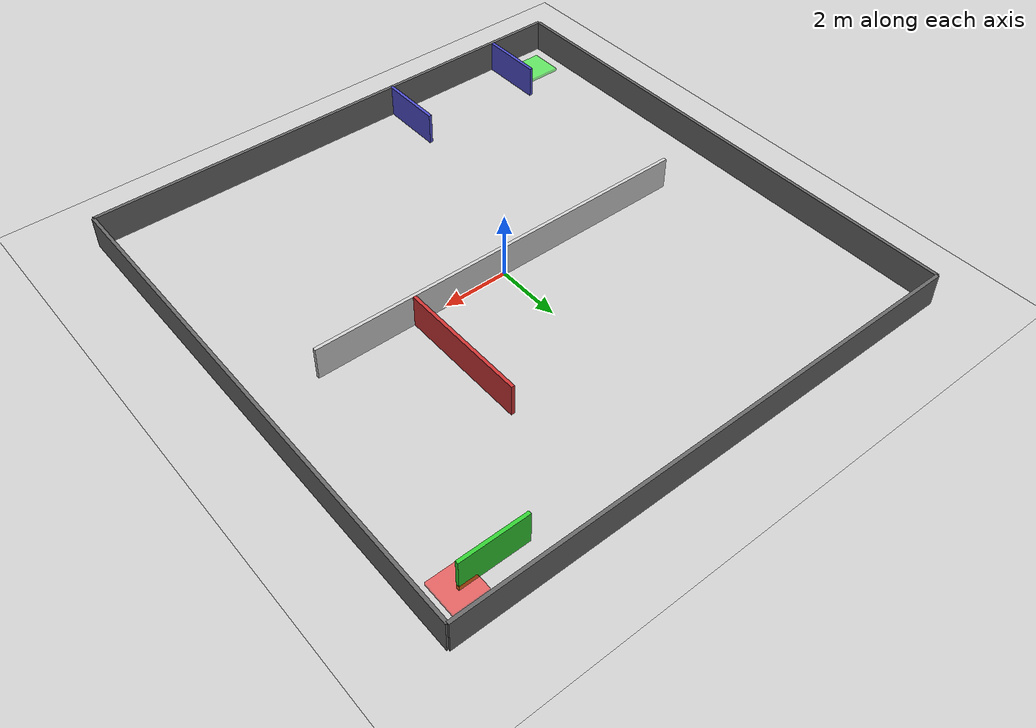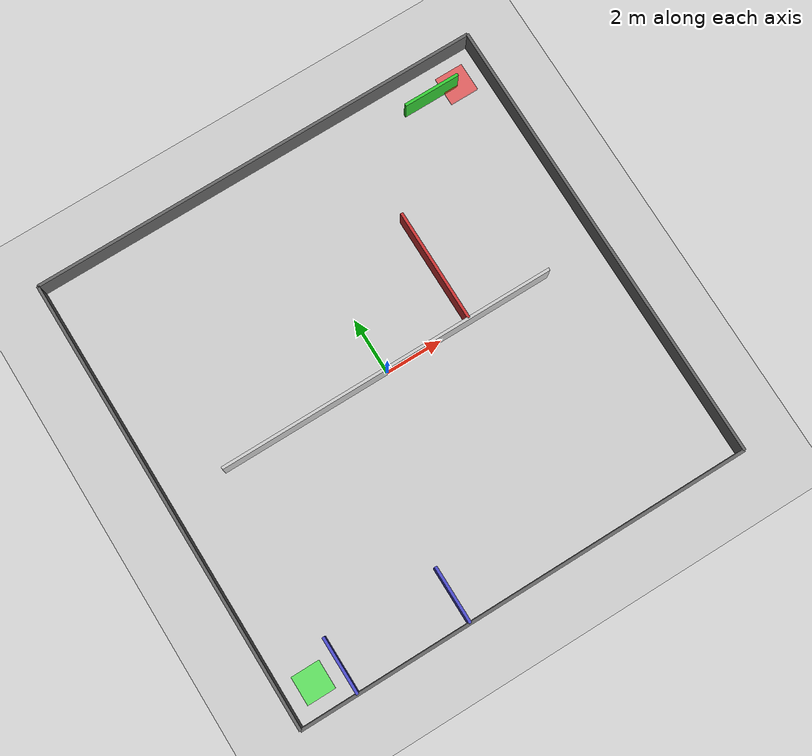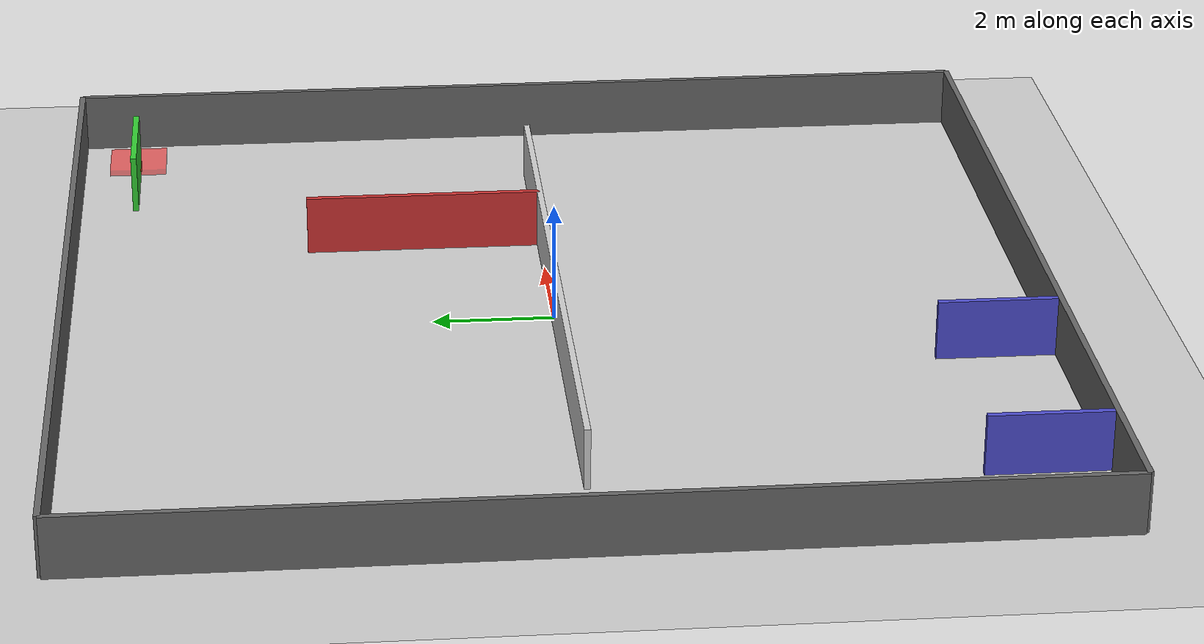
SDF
<?xml version="1.0"?>
<sdf version="1.7">
  <world name="advanced_maze">

    <!-- Environment Setup -->
    <include>
      <uri>model://sun</uri>
      <pose>0 0 10 0 0 0</pose>
    </include>

    <include>
      <uri>model://ground_plane</uri>
      <material>
        <ambient>0.2 0.2 0.2 1</ambient>
      </material>
    </include>

    <!-- Maze Structure -->
    <model name="maze_walls">
      <static>true</static>

      <!-- Outer Perimeter -->
      <link name="outer_walls">
        <!-- North Wall -->
        <collision name="north_wall">
          <pose>0 8 0.5 0 0 0</pose>
          <geometry>
            <box><size>16 0.1 1</size></box>
          </geometry>
        </collision>
        <visual name="north_wall_visual">
          <pose>0 8 0.5 0 0 0</pose>
          <geometry>
            <box><size>16 0.1 1</size></box>
          </geometry>
          <material><ambient>0.4 0.4 0.4 1</ambient></material>
        </visual>

        <!-- South Wall -->
        <collision name="south_wall">
          <pose>0 -8 0.5 0 0 0</pose>
          <geometry>
            <box><size>16 0.1 1</size></box>
          </geometry>
        </collision>
        <visual name="south_wall_visual">
          <pose>0 -8 0.5 0 0 0</pose>
          <geometry>
            <box><size>16 0.1 1</size></box>
          </geometry>
          <material><ambient>0.4 0.4 0.4 1</ambient></material>
        </visual>

        <!-- East Wall -->
        <collision name="east_wall">
          <pose>8 0 0.5 0 0 0</pose>
          <geometry>
            <box><size>0.1 16 1</size></box>
          </geometry>
        </collision>
        <visual name="east_wall_visual">
          <pose>8 0 0.5 0 0 0</pose>
          <geometry>
            <box><size>0.1 16 1</size></box>
          </geometry>
          <material><ambient>0.4 0.4 0.4 1</ambient></material>
        </visual>

        <!-- West Wall -->
        <collision name="west_wall">
          <pose>-8 0 0.5 0 0 0</pose>
          <geometry>
            <box><size>0.1 16 1</size></box>
          </geometry>
        </collision>
        <visual name="west_wall_visual">
          <pose>-8 0 0.5 0 0 0</pose>
          <geometry>
            <box><size>0.1 16 1</size></box>
          </geometry>
          <material><ambient>0.4 0.4 0.4 1</ambient></material>
        </visual>
      </link>

      <!-- Internal Maze Structure -->
      <link name="internal_walls">
        <!-- Entry Path -->
        <collision name="entry_wall_left">
          <pose>-6 -7 0.5 0 0 0</pose>
          <geometry>
            <box><size>0.1 2 1</size></box>
          </geometry>
        </collision>
        <visual name="entry_wall_left_visual">
          <pose>-6 -7 0.5 0 0 0</pose>
          <geometry>
            <box><size>0.1 2 1</size></box>
          </geometry>
          <material><ambient>0.3 0.3 0.8 1</ambient></material>
        </visual>

        <collision name="entry_wall_right">
          <pose>-2 -7 0.5 0 0 0</pose>
          <geometry>
            <box><size>0.1 2 1</size></box>
          </geometry>
        </collision>
        <visual name="entry_wall_right_visual">
          <pose>-2 -7 0.5 0 0 0</pose>
          <geometry>
            <box><size>0.1 2 1</size></box>
          </geometry>
          <material><ambient>0.3 0.3 0.8 1</ambient></material>
        </visual>

        <!-- Main Maze Path -->
        <collision name="central_corridor">
          <pose>0 0 0.5 0 0 0</pose>
          <geometry>
            <box><size>12 0.1 1</size></box>
          </geometry>
        </collision>
        <visual name="central_corridor_visual">
          <pose>0 0 0.5 0 0 0</pose>
          <geometry>
            <box><size>12 0.1 1</size></box>
          </geometry>
          <material><ambient>0.8 0.8 0.8 1</ambient></material>
        </visual>

        <!-- Obstacles with 1m clearance for rover -->
        <collision name="obstacle_1">
          <pose>3 2 0.5 0 0 0</pose>
          <geometry>
            <box><size>0.1 4 1</size></box>
          </geometry>
        </collision>
        <visual name="obstacle_1_visual">
          <pose>3 2 0.5 0 0 0</pose>
          <geometry>
            <box><size>0.1 4 1</size></box>
          </geometry>
          <material><ambient>0.8 0.2 0.2 1</ambient></material>
        </visual>

        <!-- Exit Gate -->
        <collision name="exit_gate">
          <pose>6 7 0.5 0 0 0</pose>
          <geometry>
            <box><size>2 0.1 1</size></box>
          </geometry>
        </collision>
        <visual name="exit_gate_visual">
          <pose>6 7 0.5 0 0 0</pose>
          <geometry>
            <box><size>2 0.1 1</size></box>
          </geometry>
          <material><ambient>0.2 0.8 0.2 1</ambient></material>
        </visual>
      </link>
    </model>

    <!-- Navigation Markers -->
    <model name="start_marker">
      <static>true</static>
      <pose>-7 -7 0.1 0 0 0</pose>
      <link name="marker">
        <visual name="start_visual">
          <geometry>
            <box><size>1 1 0.1</size></box>
          </geometry>
          <material><ambient>0 1 0 0.5</ambient></material>
        </visual>
      </link>
    </model>

    <model name="finish_marker">
      <static>true</static>
      <pose>7 7 0.1 0 0 0</pose>
      <link name="marker">
        <visual name="finish_visual">
          <geometry>
            <box><size>1 1 0.1</size></box>
          </geometry>
          <material><ambient>1 0 0 0.5</ambient></material>
        </visual>
      </link>
    </model>

  </world>
</sdf>
